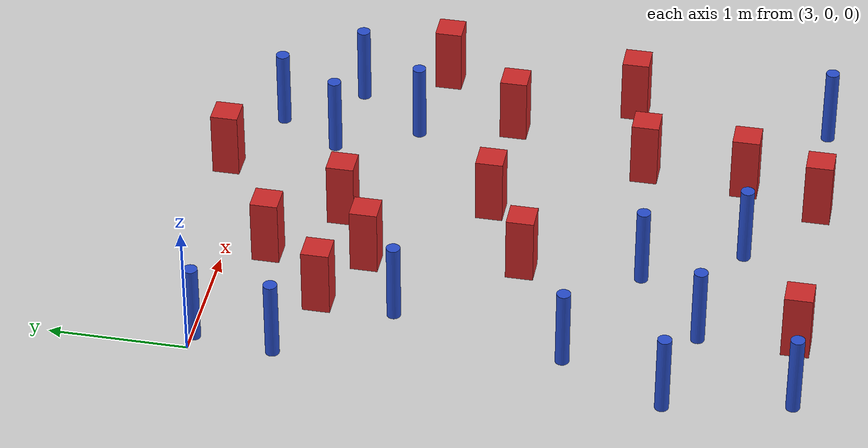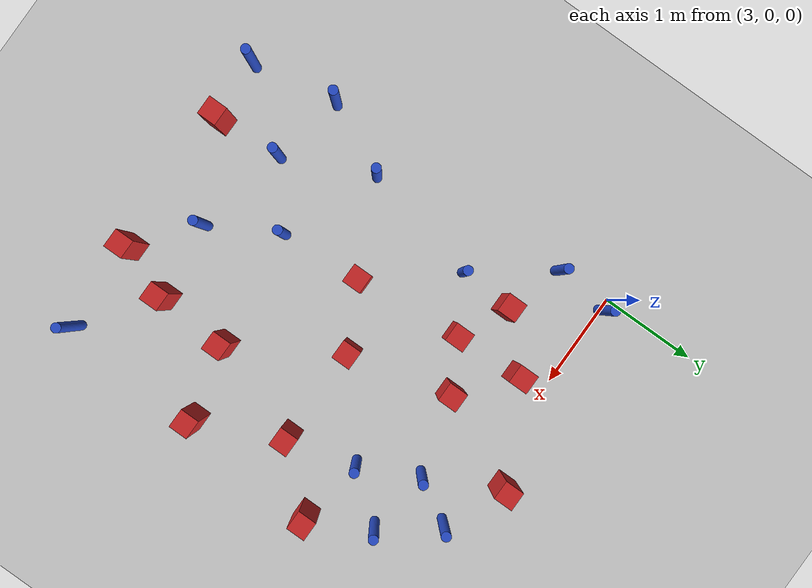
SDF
<sdf version="1.6">
 <world name="default">
  <model name="ground_plane">
   <static>1</static>
   <link name="link">
    <collision name="collision">
     <geometry><plane><normal>0 0 1</normal><size>100 100</size></plane></geometry>
     <surface><friction><ode><mu>100</mu><mu2>50</mu2></ode></friction></surface>
    </collision>
    <visual name="visual">
     <cast_shadows>0</cast_shadows>
     <geometry><plane><normal>0 0 1</normal><size>100 100</size></plane></geometry>
     <material>
      <ambient>1.0 1.0 1.0 1.0</ambient>
      <diffuse>0.8 0.8 0.8 1.0</diffuse>
      <specular>0.01 0.01 0.01 1.000000</specular>
     </material>
    </visual>
   </link>
  </model>
  <model name="pole_obstacle8">
   <static>true</static>
   <pose>5.48556464558 -0.522978440494 -2.66029137441e-07 -5.69430205637e-07 6.84129966554e-07 -8.68349370847e-08</pose>
   <link name="link">
    <pose>0 0 0.3 0 -0 0</pose>
    <inertial>
     <mass>1</mass>
     <inertia><ixx>0.145833</ixx><ixy>0</ixy><ixz>0</ixz><iyy>0.145833</iyy><iyz>0</iyz><izz>0.125</izz></inertia>
    </inertial>
    <collision name="collision">
     <geometry><cylinder><radius>0.05</radius><length>.6</length></cylinder></geometry>
    </collision>
    <visual name="visual">
     <geometry><cylinder><radius>0.05</radius><length>.6</length></cylinder></geometry>
     <material>
      <script><name>Gazebo/Blue</name><uri>file://media/materials/scripts/gazebo.material</uri></script>
     </material>
    </visual>
   </link>
  </model>
  <model name="pole_obstacle9">
   <static>true</static>
   <pose>3.62680131533 -1.34526293371 -2.66029137441e-07 -5.69430205626e-07 6.84129966567e-07 -8.68349370747e-08</pose>
   <link name="link">
    <pose>0 0 0.3 0 -0 0</pose>
    <inertial>
     <mass>1</mass>
     <inertia><ixx>0.145833</ixx><ixy>0</ixy><ixz>0</ixz><iyy>0.145833</iyy><iyz>0</iyz><izz>0.125</izz></inertia>
    </inertial>
    <collision name="collision">
     <geometry><cylinder><radius>0.05</radius><length>.6</length></cylinder></geometry>
    </collision>
    <visual name="visual">
     <geometry><cylinder><radius>0.05</radius><length>.6</length></cylinder></geometry>
     <material>
      <script><name>Gazebo/Blue</name><uri>file://media/materials/scripts/gazebo.material</uri></script>
     </material>
    </visual>
   </link>
  </model>
  <model name="square_post_obstacle17">
   <static>true</static>
   <pose>4.17508941673 -1.03326781542 -7.80171244635e-07 7.17449752808e-06 -5.6639232126e-07 2.2715510512e-05</pose>
   <link name="link">
    <pose>0 0 0.25 0 -0 0</pose>
    <inertial>
     <mass>100</mass>
     <inertia>
      <ixx>0.166667</ixx>
      <ixy>0</ixy>
      <ixz>0</ixz>
      <iyy>0.166667</iyy>
      <iyz>0</iyz>
      <izz>0.166667</izz>
     </inertia>
    </inertial>
    <collision name="collision"><geometry><box><size>.2 .2 .5</size></box></geometry></collision>
    <visual name="visual">
     <geometry><box><size>.2 .2 .5</size></box></geometry>
     <material>
      <script><name>Gazebo/Red</name><uri>file://media/materials/scripts/gazebo.material</uri></script>
     </material>
    </visual>
   </link>
  </model>
  <model name="square_post_obstacle25">
   <static>true</static>
   <pose>6.48393168841 -1.21312505478 -7.80171244635e-07 7.17449752808e-06 -5.6639232126e-07 2.2715510512e-05</pose>
   <link name="link">
    <pose>0 0 0.25 0 -0 0</pose>
    <inertial>
     <mass>100</mass>
     <inertia>
      <ixx>0.166667</ixx>
      <ixy>0</ixy>
      <ixz>0</ixz>
      <iyy>0.166667</iyy>
      <iyz>0</iyz>
      <izz>0.166667</izz>
     </inertia>
    </inertial>
    <collision name="collision"><geometry><box><size>.2 .2 .5</size></box></geometry></collision>
    <visual name="visual">
     <geometry><box><size>.2 .2 .5</size></box></geometry>
     <material>
      <script><name>Gazebo/Red</name><uri>file://media/materials/scripts/gazebo.material</uri></script>
     </material>
    </visual>
   </link>
  </model>
  <model name="square_post_obstacle30">
   <static>true</static>
   <pose>5.57821603923 -2.85233663925 -7.80171244635e-07 7.17449752808e-06 -5.6639232126e-07 2.2715510512e-05</pose>
   <link name="link">
    <pose>0 0 0.25 0 -0 0</pose>
    <inertial>
     <mass>100</mass>
     <inertia>
      <ixx>0.166667</ixx>
      <ixy>0</ixy>
      <ixz>0</ixz>
      <iyy>0.166667</iyy>
      <iyz>0</iyz>
      <izz>0.166667</izz>
     </inertia>
    </inertial>
    <collision name="collision"><geometry><box><size>.2 .2 .5</size></box></geometry></collision>
    <visual name="visual">
     <geometry><box><size>.2 .2 .5</size></box></geometry>
     <material>
      <script><name>Gazebo/Red</name><uri>file://media/materials/scripts/gazebo.material</uri></script>
     </material>
    </visual>
   </link>
  </model>
  <model name="square_post_obstacle37">
   <static>true</static>
   <pose>5.94241191292 -1.81008041231 -7.80171244635e-07 7.17449752808e-06 -5.6639232126e-07 2.2715510512e-05</pose>
   <link name="link">
    <pose>0 0 0.25 0 -0 0</pose>
    <inertial>
     <mass>100</mass>
     <inertia>
      <ixx>0.166667</ixx>
      <ixy>0</ixy>
      <ixz>0</ixz>
      <iyy>0.166667</iyy>
      <iyz>0</iyz>
      <izz>0.166667</izz>
     </inertia>
    </inertial>
    <collision name="collision"><geometry><box><size>.2 .2 .5</size></box></geometry></collision>
    <visual name="visual">
     <geometry><box><size>.2 .2 .5</size></box></geometry>
     <material>
      <script><name>Gazebo/Red</name><uri>file://media/materials/scripts/gazebo.material</uri></script>
     </material>
    </visual>
   </link>
  </model>
  <model name="square_post_obstacle42">
   <static>true</static>
   <pose>4.14476061425 -0.316647064395 -7.80171244635e-07 7.17449752808e-06 -5.6639232126e-07 2.2715510512e-05</pose>
   <link name="link">
    <pose>0 0 0.25 0 -0 0</pose>
    <inertial>
     <mass>100</mass>
     <inertia>
      <ixx>0.166667</ixx>
      <ixy>0</ixy>
      <ixz>0</ixz>
      <iyy>0.166667</iyy>
      <iyz>0</iyz>
      <izz>0.166667</izz>
     </inertia>
    </inertial>
    <collision name="collision"><geometry><box><size>.2 .2 .5</size></box></geometry></collision>
    <visual name="visual">
     <geometry><box><size>.2 .2 .5</size></box></geometry>
     <material>
      <script><name>Gazebo/Red</name><uri>file://media/materials/scripts/gazebo.material</uri></script>
     </material>
    </visual>
   </link>
  </model>
  <model name="pole_obstacle56">
   <static>true</static>
   <pose>3.75832690348 -3.48530207013 -2.66029137441e-07 -5.69430205643e-07 6.84129966548e-07 -8.68349370903e-08</pose>
   <link name="link">
    <pose>0 0 0.3 0 -0 0</pose>
    <inertial>
     <mass>1</mass>
     <inertia><ixx>0.145833</ixx><ixy>0</ixy><ixz>0</ixz><iyy>0.145833</iyy><iyz>0</iyz><izz>0.125</izz></inertia>
    </inertial>
    <collision name="collision">
     <geometry><cylinder><radius>0.05</radius><length>.6</length></cylinder></geometry>
    </collision>
    <visual name="visual">
     <geometry><cylinder><radius>0.05</radius><length>.6</length></cylinder></geometry>
     <material>
      <script><name>Gazebo/Blue</name><uri>file://media/materials/scripts/gazebo.material</uri></script>
     </material>
    </visual>
   </link>
  </model>
  <model name="square_post_obstacle52">
   <static>true</static>
   <pose>5.53671567951 -3.60047152278 -7.80171244635e-07 7.17449752808e-06 -5.6639232126e-07 2.2715510512e-05</pose>
   <link name="link">
    <pose>0 0 0.25 0 -0 0</pose>
    <inertial>
     <mass>100</mass>
     <inertia>
      <ixx>0.166667</ixx>
      <ixy>0</ixy>
      <ixz>0</ixz>
      <iyy>0.166667</iyy>
      <iyz>0</iyz>
      <izz>0.166667</izz>
     </inertia>
    </inertial>
    <collision name="collision"><geometry><box><size>.2 .2 .5</size></box></geometry></collision>
    <visual name="visual">
     <geometry><box><size>.2 .2 .5</size></box></geometry>
     <material>
      <script><name>Gazebo/Red</name><uri>file://media/materials/scripts/gazebo.material</uri></script>
     </material>
    </visual>
   </link>
  </model>
  <model name="square_post_obstacle57">
   <static>true</static>
   <pose>3.66004645824 -0.795900308183 -7.80171244635e-07 7.17449752808e-06 -5.6639232126e-07 2.2715510512e-05</pose>
   <link name="link">
    <pose>0 0 0.25 0 -0 0</pose>
    <inertial>
     <mass>100</mass>
     <inertia>
      <ixx>0.166667</ixx>
      <ixy>0</ixy>
      <ixz>0</ixz>
      <iyy>0.166667</iyy>
      <iyz>0</iyz>
      <izz>0.166667</izz>
     </inertia>
    </inertial>
    <collision name="collision"><geometry><box><size>.2 .2 .5</size></box></geometry></collision>
    <visual name="visual">
     <geometry><box><size>.2 .2 .5</size></box></geometry>
     <material>
      <script><name>Gazebo/Red</name><uri>file://media/materials/scripts/gazebo.material</uri></script>
     </material>
    </visual>
   </link>
  </model>
  <model name="square_post_obstacle61">
   <static>true</static>
   <pose>5.11688827714 0.210095731749 -7.80171244635e-07 7.17449752808e-06 -5.6639232126e-07 2.2715510512e-05</pose>
   <link name="link">
    <pose>0 0 0.25 0 -0 0</pose>
    <inertial>
     <mass>100</mass>
     <inertia>
      <ixx>0.166667</ixx>
      <ixy>0</ixy>
      <ixz>0</ixz>
      <iyy>0.166667</iyy>
      <iyz>0</iyz>
      <izz>0.166667</izz>
     </inertia>
    </inertial>
    <collision name="collision"><geometry><box><size>.2 .2 .5</size></box></geometry></collision>
    <visual name="visual">
     <geometry><box><size>.2 .2 .5</size></box></geometry>
     <material>
      <script><name>Gazebo/Red</name><uri>file://media/materials/scripts/gazebo.material</uri></script>
     </material>
    </visual>
   </link>
  </model>
  <model name="pole_obstacle77">
   <static>true</static>
   <pose>3.16044681511 -4.21988764941 -2.66029137441e-07 -5.69430205635e-07 6.84129966557e-07 -8.68349370832e-08</pose>
   <link name="link">
    <pose>0 0 0.3 0 -0 0</pose>
    <inertial>
     <mass>1</mass>
     <inertia><ixx>0.145833</ixx><ixy>0</ixy><ixz>0</ixz><iyy>0.145833</iyy><iyz>0</iyz><izz>0.125</izz></inertia>
    </inertial>
    <collision name="collision">
     <geometry><cylinder><radius>0.05</radius><length>.6</length></cylinder></geometry>
    </collision>
    <visual name="visual">
     <geometry><cylinder><radius>0.05</radius><length>.6</length></cylinder></geometry>
     <material>
      <script><name>Gazebo/Blue</name><uri>file://media/materials/scripts/gazebo.material</uri></script>
     </material>
    </visual>
   </link>
  </model>
  <model name="square_post_obstacle74">
   <static>true</static>
   <pose>4.92937804412 -1.80684382391 -7.80171244635e-07 7.17449752808e-06 -5.6639232126e-07 2.2715510512e-05</pose>
   <link name="link">
    <pose>0 0 0.25 0 -0 0</pose>
    <inertial>
     <mass>100</mass>
     <inertia>
      <ixx>0.166667</ixx>
      <ixy>0</ixy>
      <ixz>0</ixz>
      <iyy>0.166667</iyy>
      <iyz>0</iyz>
      <izz>0.166667</izz>
     </inertia>
    </inertial>
    <collision name="collision"><geometry><box><size>.2 .2 .5</size></box></geometry></collision>
    <visual name="visual">
     <geometry><box><size>.2 .2 .5</size></box></geometry>
     <material>
      <script><name>Gazebo/Red</name><uri>file://media/materials/scripts/gazebo.material</uri></script>
     </material>
    </visual>
   </link>
  </model>
  <model name="pole_obstacle91">
   <static>true</static>
   <pose>3.06803423717 -0.595813224669 -2.66029137441e-07 -5.69430205624e-07 6.8412996657e-07 -8.68349370746e-08</pose>
   <link name="link">
    <pose>0 0 0.3 0 -0 0</pose>
    <inertial>
     <mass>1</mass>
     <inertia><ixx>0.145833</ixx><ixy>0</ixy><ixz>0</ixz><iyy>0.145833</iyy><iyz>0</iyz><izz>0.125</izz></inertia>
    </inertial>
    <collision name="collision">
     <geometry><cylinder><radius>0.05</radius><length>.6</length></cylinder></geometry>
    </collision>
    <visual name="visual">
     <geometry><cylinder><radius>0.05</radius><length>.6</length></cylinder></geometry>
     <material>
      <script><name>Gazebo/Blue</name><uri>file://media/materials/scripts/gazebo.material</uri></script>
     </material>
    </visual>
   </link>
  </model>
  <model name="square_post_obstacle95">
   <static>true</static>
   <pose>6.34978637031 -2.66949690727 -7.80171244635e-07 7.17449752808e-06 -5.6639232126e-07 2.2715510512e-05</pose>
   <link name="link">
    <pose>0 0 0.25 0 -0 0</pose>
    <inertial>
     <mass>100</mass>
     <inertia>
      <ixx>0.166667</ixx>
      <ixy>0</ixy>
      <ixz>0</ixz>
      <iyy>0.166667</iyy>
      <iyz>0</iyz>
      <izz>0.166667</izz>
     </inertia>
    </inertial>
    <collision name="collision"><geometry><box><size>.2 .2 .5</size></box></geometry></collision>
    <visual name="visual">
     <geometry><box><size>.2 .2 .5</size></box></geometry>
     <material>
      <script><name>Gazebo/Red</name><uri>file://media/materials/scripts/gazebo.material</uri></script>
     </material>
    </visual>
   </link>
  </model>
  <model name="pole_obstacle116">
   <static>true</static>
   <pose>6.28686983581 -4.14047727729 -2.66029137441e-07 -5.69430205655e-07 6.84129966534e-07 -8.68349370984e-08</pose>
   <link name="link">
    <pose>0 0 0.3 0 -0 0</pose>
    <inertial>
     <mass>1</mass>
     <inertia><ixx>0.145833</ixx><ixy>0</ixy><ixz>0</ixz><iyy>0.145833</iyy><iyz>0</iyz><izz>0.125</izz></inertia>
    </inertial>
    <collision name="collision">
     <geometry><cylinder><radius>0.05</radius><length>.6</length></cylinder></geometry>
    </collision>
    <visual name="visual">
     <geometry><cylinder><radius>0.05</radius><length>.6</length></cylinder></geometry>
     <material>
      <script><name>Gazebo/Blue</name><uri>file://media/materials/scripts/gazebo.material</uri></script>
     </material>
    </visual>
   </link>
  </model>
  <model name="square_post_obstacle129">
   <static>true</static>
   <pose>4.28862442654 -2.14318529634 -7.80171244635e-07 7.17449752808e-06 -5.6639232126e-07 2.2715510512e-05</pose>
   <link name="link">
    <pose>0 0 0.25 0 -0 0</pose>
    <inertial>
     <mass>100</mass>
     <inertia>
      <ixx>0.166667</ixx>
      <ixy>0</ixy>
      <ixz>0</ixz>
      <iyy>0.166667</iyy>
      <iyz>0</iyz>
      <izz>0.166667</izz>
     </inertia>
    </inertial>
    <collision name="collision"><geometry><box><size>.2 .2 .5</size></box></geometry></collision>
    <visual name="visual">
     <geometry><box><size>.2 .2 .5</size></box></geometry>
     <material>
      <script><name>Gazebo/Red</name><uri>file://media/materials/scripts/gazebo.material</uri></script>
     </material>
    </visual>
   </link>
  </model>
  <model name="pole_obstacle146">
   <static>true</static>
   <pose>3.1346609038 -0.0157882824939 -2.66029137441e-07 -5.69430205625e-07 6.84129966569e-07 -8.68349370755e-08</pose>
   <link name="link">
    <pose>0 0 0.3 0 -0 0</pose>
    <inertial>
     <mass>1</mass>
     <inertia><ixx>0.145833</ixx><ixy>0</ixy><ixz>0</ixz><iyy>0.145833</iyy><iyz>0</iyz><izz>0.125</izz></inertia>
    </inertial>
    <collision name="collision">
     <geometry><cylinder><radius>0.05</radius><length>.6</length></cylinder></geometry>
    </collision>
    <visual name="visual">
     <geometry><cylinder><radius>0.05</radius><length>.6</length></cylinder></geometry>
     <material>
      <script><name>Gazebo/Blue</name><uri>file://media/materials/scripts/gazebo.material</uri></script>
     </material>
    </visual>
   </link>
  </model>
  <model name="pole_obstacle149">
   <static>true</static>
   <pose>5.75081618374 -0.0707773751322 -2.66029137441e-07 -5.69430205621e-07 6.84129966573e-07 -8.68349370722e-08</pose>
   <link name="link">
    <pose>0 0 0.3 0 -0 0</pose>
    <inertial>
     <mass>1</mass>
     <inertia><ixx>0.145833</ixx><ixy>0</ixy><ixz>0</ixz><iyy>0.145833</iyy><iyz>0</iyz><izz>0.125</izz></inertia>
    </inertial>
    <collision name="collision">
     <geometry><cylinder><radius>0.05</radius><length>.6</length></cylinder></geometry>
    </collision>
    <visual name="visual">
     <geometry><cylinder><radius>0.05</radius><length>.6</length></cylinder></geometry>
     <material>
      <script><name>Gazebo/Blue</name><uri>file://media/materials/scripts/gazebo.material</uri></script>
     </material>
    </visual>
   </link>
  </model>
  <model name="pole_obstacle150">
   <static>true</static>
   <pose>2.99726680464 -3.33847926005 -2.66029137441e-07 -5.69430205643e-07 6.84129966548e-07 -8.68349370903e-08</pose>
   <link name="link">
    <pose>0 0 0.3 0 -0 0</pose>
    <inertial>
     <mass>1</mass>
     <inertia><ixx>0.145833</ixx><ixy>0</ixy><ixz>0</ixz><iyy>0.145833</iyy><iyz>0</iyz><izz>0.125</izz></inertia>
    </inertial>
    <collision name="collision">
     <geometry><cylinder><radius>0.05</radius><length>.6</length></cylinder></geometry>
    </collision>
    <visual name="visual">
     <geometry><cylinder><radius>0.05</radius><length>.6</length></cylinder></geometry>
     <material>
      <script><name>Gazebo/Blue</name><uri>file://media/materials/scripts/gazebo.material</uri></script>
     </material>
    </visual>
   </link>
  </model>
  <model name="square_post_obstacle153">
   <static>true</static>
   <pose>5.3291465948 -4.15873363536 -7.80171244635e-07 7.17449752808e-06 -5.6639232126e-07 2.2715510512e-05</pose>
   <link name="link">
    <pose>0 0 0.25 0 -0 0</pose>
    <inertial>
     <mass>100</mass>
     <inertia>
      <ixx>0.166667</ixx>
      <ixy>0</ixy>
      <ixz>0</ixz>
      <iyy>0.166667</iyy>
      <iyz>0</iyz>
      <izz>0.166667</izz>
     </inertia>
    </inertial>
    <collision name="collision"><geometry><box><size>.2 .2 .5</size></box></geometry></collision>
    <visual name="visual">
     <geometry><box><size>.2 .2 .5</size></box></geometry>
     <material>
      <script><name>Gazebo/Red</name><uri>file://media/materials/scripts/gazebo.material</uri></script>
     </material>
    </visual>
   </link>
  </model>
  <model name="pole_obstacle164">
   <static>true</static>
   <pose>4.35166966752 -3.00172466701 -2.66029137441e-07 -5.69430205643e-07 6.84129966548e-07 -8.68349370881e-08</pose>
   <link name="link">
    <pose>0 0 0.3 0 -0 0</pose>
    <inertial>
     <mass>1</mass>
     <inertia><ixx>0.145833</ixx><ixy>0</ixy><ixz>0</ixz><iyy>0.145833</iyy><iyz>0</iyz><izz>0.125</izz></inertia>
    </inertial>
    <collision name="collision">
     <geometry><cylinder><radius>0.05</radius><length>.6</length></cylinder></geometry>
    </collision>
    <visual name="visual">
     <geometry><cylinder><radius>0.05</radius><length>.6</length></cylinder></geometry>
     <material>
      <script><name>Gazebo/Blue</name><uri>file://media/materials/scripts/gazebo.material</uri></script>
     </material>
    </visual>
   </link>
  </model>
  <model name="square_post_obstacle171">
   <static>true</static>
   <pose>3.80027505249 -4.17196665795 -7.80171244635e-07 7.17449752808e-06 -5.6639232126e-07 2.2715510512e-05</pose>
   <link name="link">
    <pose>0 0 0.25 0 -0 0</pose>
    <inertial>
     <mass>100</mass>
     <inertia>
      <ixx>0.166667</ixx>
      <ixy>0</ixy>
      <ixz>0</ixz>
      <iyy>0.166667</iyy>
      <iyz>0</iyz>
      <izz>0.166667</izz>
     </inertia>
    </inertial>
    <collision name="collision"><geometry><box><size>.2 .2 .5</size></box></geometry></collision>
    <visual name="visual">
     <geometry><box><size>.2 .2 .5</size></box></geometry>
     <material>
      <script><name>Gazebo/Red</name><uri>file://media/materials/scripts/gazebo.material</uri></script>
     </material>
    </visual>
   </link>
  </model>
  <model name="pole_obstacle175">
   <static>true</static>
   <pose>4.73672011619 -3.691479203 -2.66029137441e-07 -5.69430205643e-07 6.84129966548e-07 -8.68349370881e-08</pose>
   <link name="link">
    <pose>0 0 0.3 0 -0 0</pose>
    <inertial>
     <mass>1</mass>
     <inertia><ixx>0.145833</ixx><ixy>0</ixy><ixz>0</ixz><iyy>0.145833</iyy><iyz>0</iyz><izz>0.125</izz></inertia>
    </inertial>
    <collision name="collision">
     <geometry><cylinder><radius>0.05</radius><length>.6</length></cylinder></geometry>
    </collision>
    <visual name="visual">
     <geometry><cylinder><radius>0.05</radius><length>.6</length></cylinder></geometry>
     <material>
      <script><name>Gazebo/Blue</name><uri>file://media/materials/scripts/gazebo.material</uri></script>
     </material>
    </visual>
   </link>
  </model>
  <model name="pole_obstacle176">
   <static>true</static>
   <pose>6.16942751164 -0.602673733651 -2.66029137441e-07 -5.69430205635e-07 6.84129966557e-07 -8.68349370823e-08</pose>
   <link name="link">
    <pose>0 0 0.3 0 -0 0</pose>
    <inertial>
     <mass>1</mass>
     <inertia><ixx>0.145833</ixx><ixy>0</ixy><ixz>0</ixz><iyy>0.145833</iyy><iyz>0</iyz><izz>0.125</izz></inertia>
    </inertial>
    <collision name="collision">
     <geometry><cylinder><radius>0.05</radius><length>.6</length></cylinder></geometry>
    </collision>
    <visual name="visual">
     <geometry><cylinder><radius>0.05</radius><length>.6</length></cylinder></geometry>
     <material>
      <script><name>Gazebo/Blue</name><uri>file://media/materials/scripts/gazebo.material</uri></script>
     </material>
    </visual>
   </link>
  </model>
  <model name="pole_obstacle177">
   <static>true</static>
   <pose>3.35168741306 -2.5922402351 -2.66029137441e-07 -5.69430205643e-07 6.84129966548e-07 -8.68349370903e-08</pose>
   <link name="link">
    <pose>0 0 0.3 0 -0 0</pose>
    <inertial>
     <mass>1</mass>
     <inertia><ixx>0.145833</ixx><ixy>0</ixy><ixz>0</ixz><iyy>0.145833</iyy><iyz>0</iyz><izz>0.125</izz></inertia>
    </inertial>
    <collision name="collision">
     <geometry><cylinder><radius>0.05</radius><length>.6</length></cylinder></geometry>
    </collision>
    <visual name="visual">
     <geometry><cylinder><radius>0.05</radius><length>.6</length></cylinder></geometry>
     <material>
      <script><name>Gazebo/Blue</name><uri>file://media/materials/scripts/gazebo.material</uri></script>
     </material>
    </visual>
   </link>
  </model>
  <model name="square_post_obstacle186">
   <static>true</static>
   <pose>4.67187401048 -0.756591584636 -7.80171244635e-07 7.17449752808e-06 -5.6639232126e-07 2.2715510512e-05</pose>
   <link name="link">
    <pose>0 0 0.25 0 -0 0</pose>
    <inertial>
     <mass>100</mass>
     <inertia>
      <ixx>0.166667</ixx>
      <ixy>0</ixy>
      <ixz>0</ixz>
      <iyy>0.166667</iyy>
      <iyz>0</iyz>
      <izz>0.166667</izz>
     </inertia>
    </inertial>
    <collision name="collision"><geometry><box><size>.2 .2 .5</size></box></geometry></collision>
    <visual name="visual">
     <geometry><box><size>.2 .2 .5</size></box></geometry>
     <material>
      <script><name>Gazebo/Red</name><uri>file://media/materials/scripts/gazebo.material</uri></script>
     </material>
    </visual>
   </link>
  </model>
  <model name="pole_obstacle221">
   <static>true</static>
   <pose>5.76957000888 -1.10902997996 -2.66029137441e-07 -5.69430205626e-07 6.84129966567e-07 -8.68349370773e-08</pose>
   <link name="link">
    <pose>0 0 0.3 0 -0 0</pose>
    <inertial>
     <mass>1</mass>
     <inertia><ixx>0.145833</ixx><ixy>0</ixy><ixz>0</ixz><iyy>0.145833</iyy><iyz>0</iyz><izz>0.125</izz></inertia>
    </inertial>
    <collision name="collision">
     <geometry><cylinder><radius>0.05</radius><length>.6</length></cylinder></geometry>
    </collision>
    <visual name="visual">
     <geometry><cylinder><radius>0.05</radius><length>.6</length></cylinder></geometry>
     <material>
      <script><name>Gazebo/Blue</name><uri>file://media/materials/scripts/gazebo.material</uri></script>
     </material>
    </visual>
   </link>
  </model>
 </world>
</sdf>
